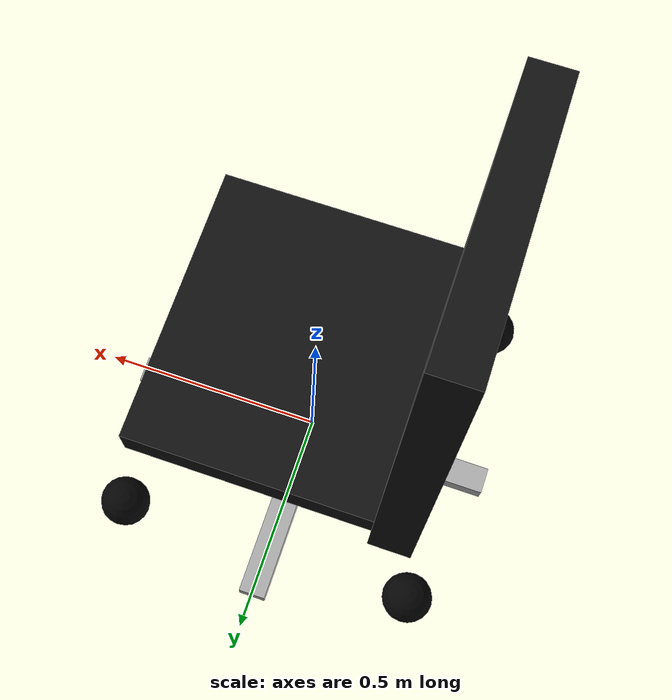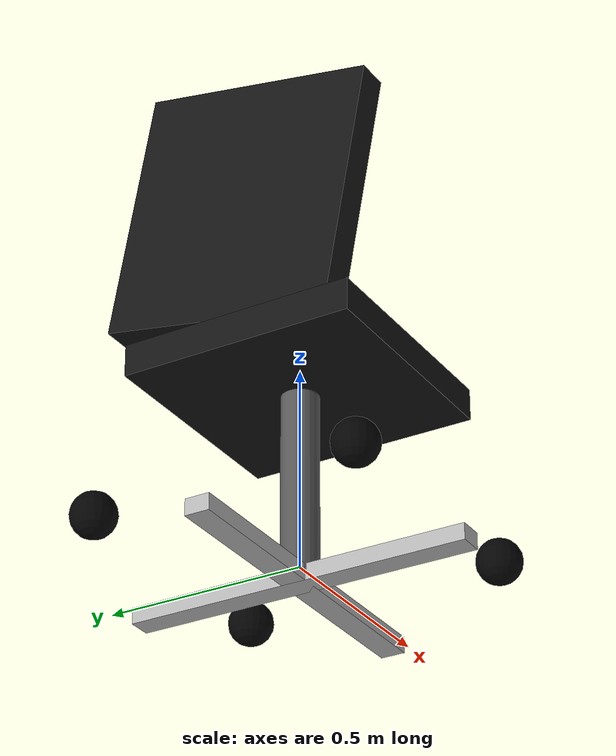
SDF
<?xml version="1.0"?>
<sdf version="1.10">
  <model name="wheeled_office_chair">
    <static>false</static>
    <self_collide>false</self_collide>
    <allow_auto_disable>false</allow_auto_disable>

    <!-- Main chair body. Keep mass moderate so Piper arm can move it in sim. -->
    <link name="chair_body">
      <pose>0 0 0.47 0 0 0</pose>
      <inertial>
        <mass>8.0</mass>
        <inertia>
          <ixx>0.45</ixx><ixy>0</ixy><ixz>0</ixz>
          <iyy>0.45</iyy><iyz>0</iyz>
          <izz>0.35</izz>
        </inertia>
      </inertial>

      <!-- Seat -->
      <visual name="seat_visual">
        <pose>0 0 0 0 0 0</pose>
        <geometry><box><size>0.58 0.58 0.08</size></box></geometry>
        <material><ambient>0.05 0.05 0.05 1</ambient><diffuse>0.08 0.08 0.08 1</diffuse></material>
      </visual>
      <collision name="seat_collision">
        <pose>0 0 0 0 0 0</pose>
        <geometry><box><size>0.58 0.58 0.08</size></box></geometry>
        <surface>
          <friction><ode><mu>0.7</mu><mu2>0.7</mu2></ode></friction>
        </surface>
      </collision>

      <!-- Backrest -->
      <visual name="back_visual">
        <pose>-0.25 0 0.34 0.18 0 0</pose>
        <geometry><box><size>0.08 0.58 0.62</size></box></geometry>
        <material><ambient>0.05 0.05 0.05 1</ambient><diffuse>0.08 0.08 0.08 1</diffuse></material>
      </visual>
      <collision name="back_collision">
        <pose>-0.25 0 0.34 0.18 0 0</pose>
        <geometry><box><size>0.08 0.58 0.62</size></box></geometry>
      </collision>

      <!-- Center column -->
      <visual name="column_visual">
        <pose>0 0 -0.25 0 0 0</pose>
        <geometry><cylinder><radius>0.045</radius><length>0.50</length></cylinder></geometry>
        <material><ambient>0.25 0.25 0.25 1</ambient><diffuse>0.35 0.35 0.35 1</diffuse></material>
      </visual>
      <collision name="column_collision">
        <pose>0 0 -0.25 0 0 0</pose>
        <geometry><cylinder><radius>0.045</radius><length>0.50</length></cylinder></geometry>
      </collision>

      <!-- Five-star base approximated using thin bars -->
      <visual name="base_bar_x_visual"><pose>0 0 -0.50 0 0 0</pose><geometry><box><size>0.85 0.06 0.04</size></box></geometry></visual>
      <collision name="base_bar_x_collision"><pose>0 0 -0.50 0 0 0</pose><geometry><box><size>0.85 0.06 0.04</size></box></geometry></collision>
      <visual name="base_bar_y_visual"><pose>0 0 -0.50 0 0 1.5708</pose><geometry><box><size>0.85 0.06 0.04</size></box></geometry></visual>
      <collision name="base_bar_y_collision"><pose>0 0 -0.50 0 0 1.5708</pose><geometry><box><size>0.85 0.06 0.04</size></box></geometry></collision>
    </link>

    <!-- Passive low-friction caster approximations. These are small spheres, not driven wheels. -->
    <link name="caster_fl">
      <pose>0.33 0.33 0.07 0 0 0</pose>
      <inertial><mass>0.25</mass><inertia><ixx>0.001</ixx><iyy>0.001</iyy><izz>0.001</izz></inertia></inertial>
      <visual name="visual"><geometry><sphere><radius>0.055</radius></sphere></geometry><material><ambient>0.02 0.02 0.02 1</ambient><diffuse>0.02 0.02 0.02 1</diffuse></material></visual>
      <collision name="collision"><geometry><sphere><radius>0.055</radius></sphere></geometry><surface><friction><ode><mu>0.08</mu><mu2>0.08</mu2></ode></friction></surface></collision>
    </link>
    <joint name="caster_fl_joint" type="fixed"><parent>chair_body</parent><child>caster_fl</child><pose relative_to="chair_body">0.33 0.33 -0.40 0 0 0</pose></joint>

    <link name="caster_fr">
      <pose>0.33 -0.33 0.07 0 0 0</pose>
      <inertial><mass>0.25</mass><inertia><ixx>0.001</ixx><iyy>0.001</iyy><izz>0.001</izz></inertia></inertial>
      <visual name="visual"><geometry><sphere><radius>0.055</radius></sphere></geometry><material><ambient>0.02 0.02 0.02 1</ambient><diffuse>0.02 0.02 0.02 1</diffuse></material></visual>
      <collision name="collision"><geometry><sphere><radius>0.055</radius></sphere></geometry><surface><friction><ode><mu>0.08</mu><mu2>0.08</mu2></ode></friction></surface></collision>
    </link>
    <joint name="caster_fr_joint" type="fixed"><parent>chair_body</parent><child>caster_fr</child><pose relative_to="chair_body">0.33 -0.33 -0.40 0 0 0</pose></joint>

    <link name="caster_rl">
      <pose>-0.33 0.33 0.07 0 0 0</pose>
      <inertial><mass>0.25</mass><inertia><ixx>0.001</ixx><iyy>0.001</iyy><izz>0.001</izz></inertia></inertial>
      <visual name="visual"><geometry><sphere><radius>0.055</radius></sphere></geometry><material><ambient>0.02 0.02 0.02 1</ambient><diffuse>0.02 0.02 0.02 1</diffuse></material></visual>
      <collision name="collision"><geometry><sphere><radius>0.055</radius></sphere></geometry><surface><friction><ode><mu>0.08</mu><mu2>0.08</mu2></ode></friction></surface></collision>
    </link>
    <joint name="caster_rl_joint" type="fixed"><parent>chair_body</parent><child>caster_rl</child><pose relative_to="chair_body">-0.33 0.33 -0.40 0 0 0</pose></joint>

    <link name="caster_rr">
      <pose>-0.33 -0.33 0.07 0 0 0</pose>
      <inertial><mass>0.25</mass><inertia><ixx>0.001</ixx><iyy>0.001</iyy><izz>0.001</izz></inertia></inertial>
      <visual name="visual"><geometry><sphere><radius>0.055</radius></sphere></geometry><material><ambient>0.02 0.02 0.02 1</ambient><diffuse>0.02 0.02 0.02 1</diffuse></material></visual>
      <collision name="collision"><geometry><sphere><radius>0.055</radius></sphere></geometry><surface><friction><ode><mu>0.08</mu><mu2>0.08</mu2></ode></friction></surface></collision>
    </link>
    <joint name="caster_rr_joint" type="fixed"><parent>chair_body</parent><child>caster_rr</child><pose relative_to="chair_body">-0.33 -0.33 -0.40 0 0 0</pose></joint>
  </model>
</sdf>
